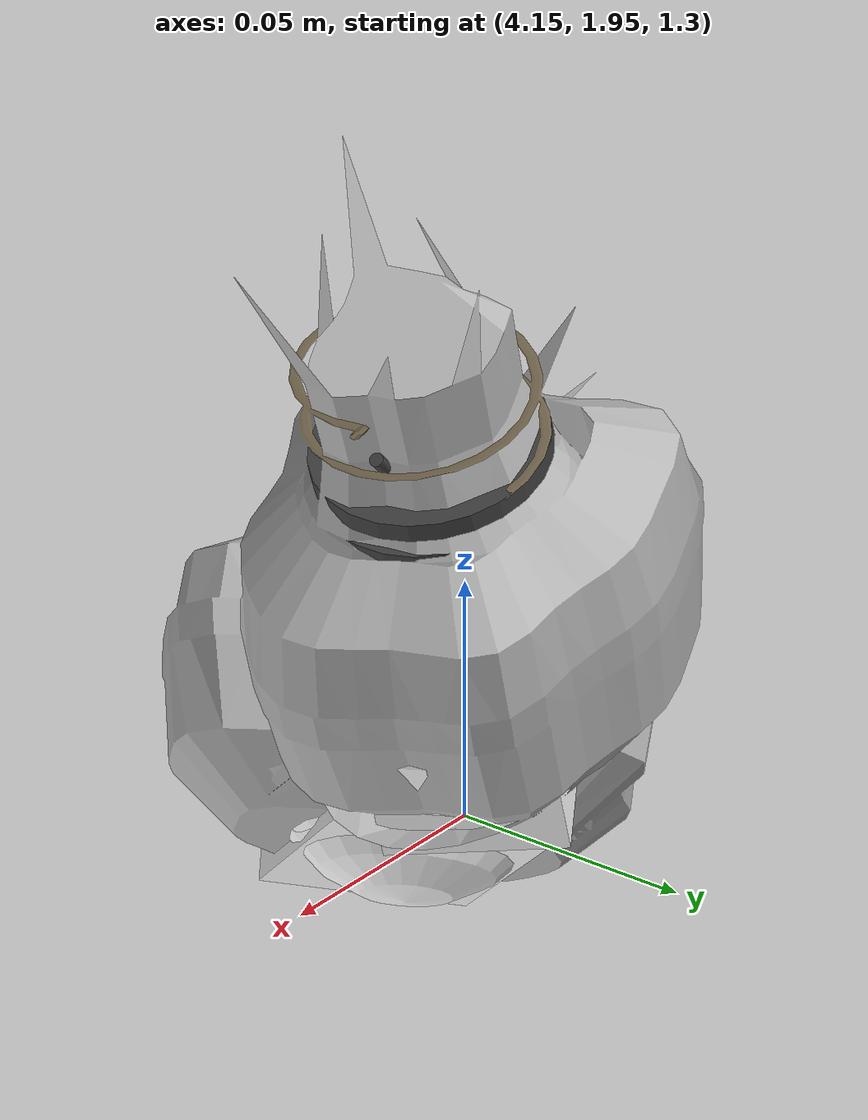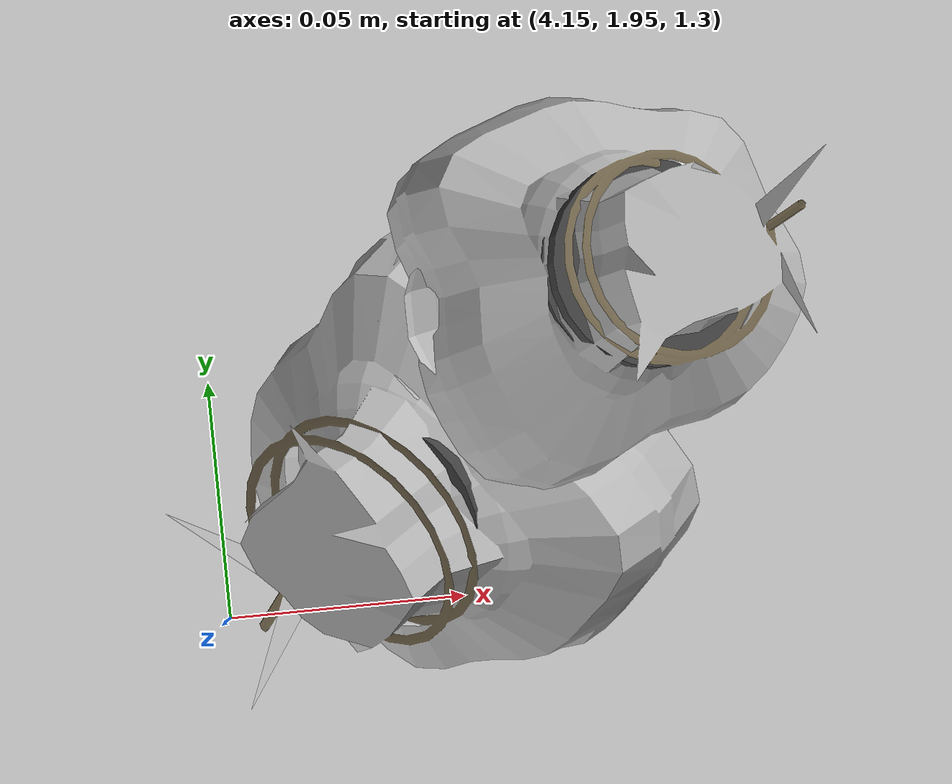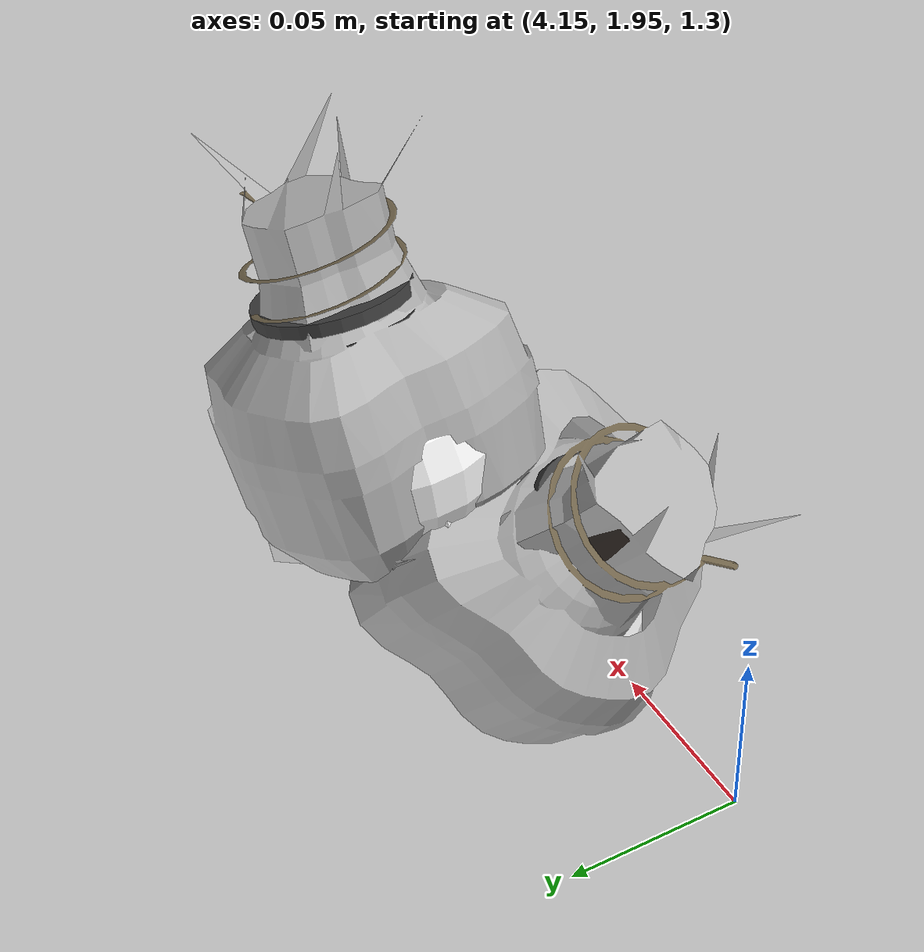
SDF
<sdf version="1.11">
 <world name="peach_orchard">
  <model name="ground">
   <static>true</static>
   <link name="link">
    <visual name="soil">
     <geometry><plane><normal>0 0 1</normal><size>32 22</size></plane></geometry>
     <material>
      <ambient>1 1 1 1</ambient>
      <diffuse>1 1 1 1</diffuse>
      <specular>0.1 0.1 0.1 1</specular>
      <pbr>
       <metal>
        <albedo_map>textures/soil_albedo.png</albedo_map>
        <normal_map type="tangent">textures/soil_normal.png</normal_map>
        <roughness>0.95</roughness>
        <metalness>0</metalness>
       </metal>
      </pbr>
     </material>
    </visual>
    <collision name="c_soil">
     <geometry><plane><normal>0 0 1</normal><size>32 22</size></plane></geometry>
    </collision>
   </link>
  </model>
  <model name="peach_tree_r3_t4_05">
   <pose>4.22 1.99134 1.33334 0 0.729392 -2.57434</pose>
   <static>true</static>
   <link name="bag">
    <visual name="bag_mesh">
     <pose>0 0 0.0406661 0 0 -0</pose>
     <geometry>
      <mesh><uri>model://peach_sim/meshes/bagged_peach.glb</uri><scale>1.05786 1.30804 0.924229</scale></mesh>
     </geometry>
    </visual>
    <visual name="body">
     <pose>0 0 0.0226661 0 0 0</pose>
     <geometry><ellipsoid><radii>0.0396696 0.0340091 0.0244793</radii></ellipsoid></geometry>
     <material>
      <ambient>1 1 1 1</ambient>
      <diffuse>1 1 1 1</diffuse>
      <specular>0.1 0.1 0.1 1</specular>
      <pbr>
       <metal>
        <albedo_map>textures/paper_bag_albedo.png</albedo_map>
        <normal_map type="tangent">textures/paper_bag_normal.png</normal_map>
        <roughness>0.72</roughness>
        <metalness>0</metalness>
       </metal>
      </pbr>
     </material>
    </visual>
    <visual name="bottom_fold">
     <pose>0 0 0.012 0 0 0.35</pose>
     <geometry><box><size>0.0614879 0.0391105 0.022</size></box></geometry>
     <material>
      <ambient>1 1 1 1</ambient>
      <diffuse>1 1 1 1</diffuse>
      <specular>0.1 0.1 0.1 1</specular>
      <pbr>
       <metal>
        <albedo_map>textures/paper_bag_albedo.png</albedo_map>
        <normal_map type="tangent">textures/paper_bag_normal.png</normal_map>
        <roughness>0.8</roughness>
        <metalness>0</metalness>
       </metal>
      </pbr>
     </material>
    </visual>
    <visual name="fruit">
     <pose>0 0 0.0199639 0 0 0</pose>
     <geometry><sphere><radius>0.0270024</radius></sphere></geometry>
     <material>
      <ambient>1 1 1 1</ambient>
      <diffuse>1 1 1 1</diffuse>
      <specular>0.1 0.1 0.1 1</specular>
      <pbr>
       <metal>
        <albedo_map>textures/fruit_skin_albedo.png</albedo_map>
        <normal_map type="tangent">textures/fruit_skin_normal.png</normal_map>
        <roughness>0.55</roughness>
        <metalness>0</metalness>
       </metal>
      </pbr>
     </material>
    </visual>
    <visual name="neck">
     <pose>0 0 0.0543321 0 0 0</pose>
     <geometry><cylinder><radius>0.013</radius><length>0.018</length></cylinder></geometry>
     <material>
      <ambient>1 1 1 1</ambient>
      <diffuse>1 1 1 1</diffuse>
      <specular>0.1 0.1 0.1 1</specular>
      <pbr>
       <metal>
        <albedo_map>textures/paper_bag_albedo.png</albedo_map>
        <normal_map type="tangent">textures/paper_bag_normal.png</normal_map>
        <roughness>0.75</roughness>
        <metalness>0</metalness>
       </metal>
      </pbr>
     </material>
    </visual>
    <visual name="gather">
     <pose>0 0 0.0353321 0 0 0</pose>
     <geometry><cylinder><radius>0.019</radius><length>0.02</length></cylinder></geometry>
     <material>
      <ambient>1 1 1 1</ambient>
      <diffuse>1 1 1 1</diffuse>
      <specular>0.1 0.1 0.1 1</specular>
      <pbr>
       <metal>
        <albedo_map>textures/paper_bag_albedo.png</albedo_map>
        <normal_map type="tangent">textures/paper_bag_normal.png</normal_map>
        <roughness>0.8</roughness>
        <metalness>0</metalness>
       </metal>
      </pbr>
     </material>
    </visual>
    <visual name="inner_paper">
     <pose>0 0 0.0593321 0 0 0</pose>
     <geometry><cylinder><radius>0.01</radius><length>0.008</length></cylinder></geometry>
     <material>
      <ambient>0.180392 0.14902 0.133333 1</ambient>
      <diffuse>0.180392 0.14902 0.133333 1</diffuse>
      <specular>0.1 0.1 0.1 1</specular>
     </material>
    </visual>
    <visual name="wire_0">
     <pose>0 0 0.0493321 0 0 0</pose>
     <geometry><cylinder><radius>0.0205</radius><length>0.0035</length></cylinder></geometry>
     <material>
      <ambient>0.25 0.25 0.25 1</ambient>
      <diffuse>0.25 0.25 0.25 1</diffuse>
      <specular>0.1 0.1 0.1 1</specular>
     </material>
    </visual>
    <visual name="wire_1">
     <pose>0 0 0.0563321 0 0 0</pose>
     <geometry><cylinder><radius>0.0205</radius><length>0.0035</length></cylinder></geometry>
     <material>
      <ambient>0.25 0.25 0.25 1</ambient>
      <diffuse>0.25 0.25 0.25 1</diffuse>
      <specular>0.1 0.1 0.1 1</specular>
     </material>
    </visual>
    <visual name="wire_tail">
     <pose>0.01 0 0.0573321 0 0.521618 0</pose>
     <geometry><cylinder><radius>0.0012</radius><length>0.026</length></cylinder></geometry>
     <material>
      <ambient>0.25 0.25 0.25 1</ambient>
      <diffuse>0.25 0.25 0.25 1</diffuse>
      <specular>0.1 0.1 0.1 1</specular>
     </material>
    </visual>
    <collision name="c_body">
     <pose>0 0 0.0226661 0 0 0</pose>
     <geometry><cylinder><radius>0.0396696</radius><length>0.0453321</length></cylinder></geometry>
    </collision>
   </link>
  </model>
  <model name="peach_tree_r3_t4_06">
   <pose>4.22 2.0098 1.36483 0 0.346616 0.19879</pose>
   <static>true</static>
   <link name="bag">
    <visual name="bag_mesh">
     <pose>0 0 0.046563 0 0 0</pose>
     <geometry>
      <mesh><uri>model://peach_sim/meshes/bagged_peach.glb</uri><scale>0.977343 1.07638 1.05825</scale></mesh>
     </geometry>
    </visual>
    <visual name="body">
     <pose>0 0 0.028563 0 0 0</pose>
     <geometry><ellipsoid><radii>0.0366504 0.0279858 0.030848</radii></ellipsoid></geometry>
     <material>
      <ambient>1 1 1 1</ambient>
      <diffuse>1 1 1 1</diffuse>
      <specular>0.1 0.1 0.1 1</specular>
      <pbr>
       <metal>
        <albedo_map>textures/paper_bag_albedo.png</albedo_map>
        <normal_map type="tangent">textures/paper_bag_normal.png</normal_map>
        <roughness>0.72</roughness>
        <metalness>0</metalness>
       </metal>
      </pbr>
     </material>
    </visual>
    <visual name="bottom_fold">
     <pose>0 0 0.012 0 0 0.35</pose>
     <geometry><box><size>0.056808 0.0321837 0.022</size></box></geometry>
     <material>
      <ambient>1 1 1 1</ambient>
      <diffuse>1 1 1 1</diffuse>
      <specular>0.1 0.1 0.1 1</specular>
      <pbr>
       <metal>
        <albedo_map>textures/paper_bag_albedo.png</albedo_map>
        <normal_map type="tangent">textures/paper_bag_normal.png</normal_map>
        <roughness>0.8</roughness>
        <metalness>0</metalness>
       </metal>
      </pbr>
     </material>
    </visual>
    <visual name="fruit">
     <pose>0 0 0.0194701 0 0 0</pose>
     <geometry><sphere><radius>0.0264889</radius></sphere></geometry>
     <material>
      <ambient>1 1 1 1</ambient>
      <diffuse>1 1 1 1</diffuse>
      <specular>0.1 0.1 0.1 1</specular>
      <pbr>
       <metal>
        <albedo_map>textures/fruit_skin_albedo.png</albedo_map>
        <normal_map type="tangent">textures/fruit_skin_normal.png</normal_map>
        <roughness>0.55</roughness>
        <metalness>0</metalness>
       </metal>
      </pbr>
     </material>
    </visual>
    <visual name="neck">
     <pose>0 0 0.0661259 0 0 0</pose>
     <geometry><cylinder><radius>0.013</radius><length>0.018</length></cylinder></geometry>
     <material>
      <ambient>1 1 1 1</ambient>
      <diffuse>1 1 1 1</diffuse>
      <specular>0.1 0.1 0.1 1</specular>
      <pbr>
       <metal>
        <albedo_map>textures/paper_bag_albedo.png</albedo_map>
        <normal_map type="tangent">textures/paper_bag_normal.png</normal_map>
        <roughness>0.75</roughness>
        <metalness>0</metalness>
       </metal>
      </pbr>
     </material>
    </visual>
    <visual name="gather">
     <pose>0 0 0.0471259 0 0 0</pose>
     <geometry><cylinder><radius>0.019</radius><length>0.02</length></cylinder></geometry>
     <material>
      <ambient>1 1 1 1</ambient>
      <diffuse>1 1 1 1</diffuse>
      <specular>0.1 0.1 0.1 1</specular>
      <pbr>
       <metal>
        <albedo_map>textures/paper_bag_albedo.png</albedo_map>
        <normal_map type="tangent">textures/paper_bag_normal.png</normal_map>
        <roughness>0.8</roughness>
        <metalness>0</metalness>
       </metal>
      </pbr>
     </material>
    </visual>
    <visual name="inner_paper">
     <pose>0 0 0.0711259 0 0 0</pose>
     <geometry><cylinder><radius>0.01</radius><length>0.008</length></cylinder></geometry>
     <material>
      <ambient>0.180392 0.14902 0.133333 1</ambient>
      <diffuse>0.180392 0.14902 0.133333 1</diffuse>
      <specular>0.1 0.1 0.1 1</specular>
     </material>
    </visual>
    <visual name="wire_0">
     <pose>0 0 0.0611259 0 0 0</pose>
     <geometry><cylinder><radius>0.0205</radius><length>0.0035</length></cylinder></geometry>
     <material>
      <ambient>0.25 0.25 0.25 1</ambient>
      <diffuse>0.25 0.25 0.25 1</diffuse>
      <specular>0.1 0.1 0.1 1</specular>
     </material>
    </visual>
    <visual name="wire_1">
     <pose>0 0 0.0681259 0 0 0</pose>
     <geometry><cylinder><radius>0.0205</radius><length>0.0035</length></cylinder></geometry>
     <material>
      <ambient>0.25 0.25 0.25 1</ambient>
      <diffuse>0.25 0.25 0.25 1</diffuse>
      <specular>0.1 0.1 0.1 1</specular>
     </material>
    </visual>
    <visual name="wire_tail">
     <pose>0.01 0 0.0691259 0 0.521618 0</pose>
     <geometry><cylinder><radius>0.0012</radius><length>0.026</length></cylinder></geometry>
     <material>
      <ambient>0.25 0.25 0.25 1</ambient>
      <diffuse>0.25 0.25 0.25 1</diffuse>
      <specular>0.1 0.1 0.1 1</specular>
     </material>
    </visual>
    <collision name="c_body">
     <pose>0 0 0.028563 0 0 0</pose>
     <geometry><cylinder><radius>0.0366504</radius><length>0.0571259</length></cylinder></geometry>
    </collision>
   </link>
  </model>
 </world>
</sdf>
